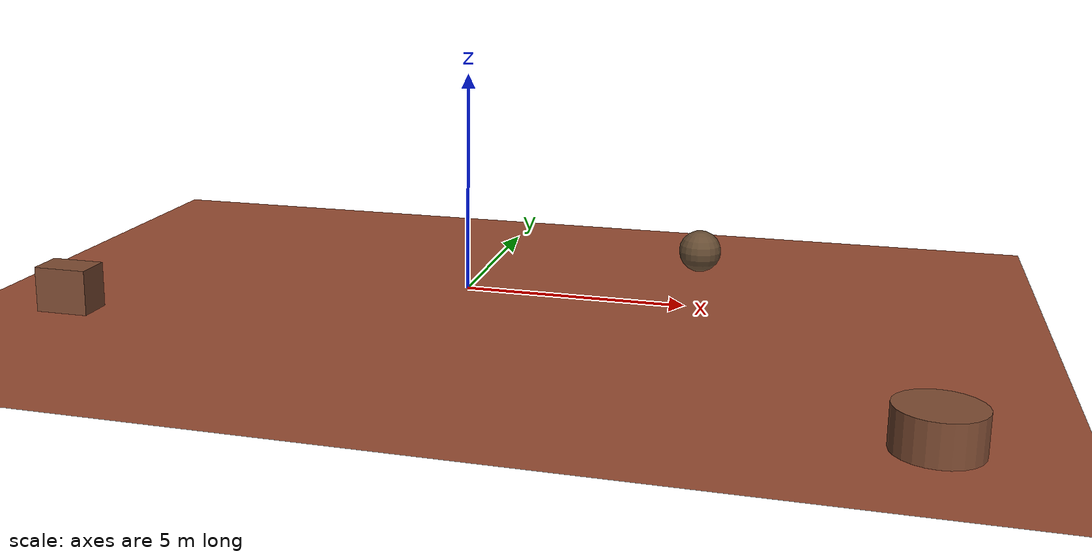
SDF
<?xml version="1.0" ?>
<sdf version="1.8">
  <world name="mars_terrain">

    <physics name="1ms" type="ignored">
      <max_step_size>0.001</max_step_size>
      <real_time_factor>1.0</real_time_factor>
    </physics>

    <plugin filename="libignition-gazebo-physics-system.so" name="ignition::gazebo::systems::Physics">
    </plugin>
    <plugin filename="libignition-gazebo-user-commands-system.so" name="ignition::gazebo::systems::UserCommands">
    </plugin>
    <plugin filename="libignition-gazebo-scene-broadcaster-system.so" name="ignition::gazebo::systems::SceneBroadcaster">
    </plugin>
    <plugin filename="libignition-gazebo-sensors-system.so" name="ignition::gazebo::systems::Sensors">
      <render_engine>ogre2</render_engine>
    </plugin>

    <scene>
      <ambient>0.4 0.4 0.4 1.0</ambient>
      <background>0.7 0.5 0.3 1.0</background>
      <shadows>true</shadows>
    </scene>

    <light type="directional" name="sun">
      <cast_shadows>true</cast_shadows>
      <pose>0 0 10 0 0 0</pose>
      <diffuse>0.8 0.8 0.8 1</diffuse>
      <specular>0.2 0.2 0.2 1</specular>
      <attenuation>
        <range>1000</range>
        <constant>0.9</constant>
        <linear>0.01</linear>
        <quadratic>0.001</quadratic>
      </attenuation>
      <direction>-0.5 0.1 -0.9</direction>
    </light>

    <!-- Ground plane -->
    <model name="ground_plane">
      <static>true</static>
      <link name="link">
        <collision name="collision">
          <geometry>
            <plane>
              <normal>0 0 1</normal>
              <size>100 100</size>
            </plane>
          </geometry>
          <surface>
            <friction>
              <ode>
                <mu>0.6</mu>
                <mu2>0.6</mu2>
              </ode>
            </friction>
          </surface>
        </collision>
        <visual name="visual">
          <geometry>
            <plane>
              <normal>0 0 1</normal>
              <size>100 100</size>
            </plane>
          </geometry>
          <material>
            <ambient>0.6 0.3 0.2 1</ambient>
            <diffuse>0.6 0.3 0.2 1</diffuse>
            <specular>0.1 0.1 0.1 1</specular>
          </material>
        </visual>
      </link>
    </model>

    <!-- Mars rocks -->
    <model name="rock_1">
      <pose>5 3 0.5 0 0 0</pose>
      <static>true</static>
      <link name="link">
        <collision name="collision">
          <geometry>
            <sphere>
              <radius>0.5</radius>
            </sphere>
          </geometry>
        </collision>
        <visual name="visual">
          <geometry>
            <sphere>
              <radius>0.5</radius>
            </sphere>
          </geometry>
          <material>
            <ambient>0.3 0.2 0.1 1</ambient>
            <diffuse>0.4 0.3 0.2 1</diffuse>
            <specular>0.1 0.1 0.1 1</specular>
          </material>
        </visual>
      </link>
    </model>

    <model name="rock_2">
      <pose>-8 -4 0.5 0 0 0</pose>
      <static>true</static>
      <link name="link">
        <collision name="collision">
          <geometry>
            <box>
              <size>1.2 0.8 1.0</size>
            </box>
          </geometry>
        </collision>
        <visual name="visual">
          <geometry>
            <box>
              <size>1.2 0.8 1.0</size>
            </box>
          </geometry>
          <material>
            <ambient>0.3 0.2 0.1 1</ambient>
            <diffuse>0.5 0.3 0.2 1</diffuse>
            <specular>0.1 0.1 0.1 1</specular>
          </material>
        </visual>
      </link>
    </model>

    <model name="rock_3">
      <pose>10 -7 0.4 0 0 0.5</pose>
      <static>true</static>
      <link name="link">
        <collision name="collision">
          <geometry>
            <cylinder>
              <radius>0.8</radius>
              <length>0.8</length>
            </cylinder>
          </geometry>
        </collision>
        <visual name="visual">
          <geometry>
            <cylinder>
              <radius>0.8</radius>
              <length>0.8</length>
            </cylinder>
          </geometry>
          <material>
            <ambient>0.4 0.2 0.1 1</ambient>
            <diffuse>0.5 0.3 0.2 1</diffuse>
            <specular>0.1 0.1 0.1 1</specular>
          </material>
        </visual>
      </link>
    </model>

  </world>
</sdf>
